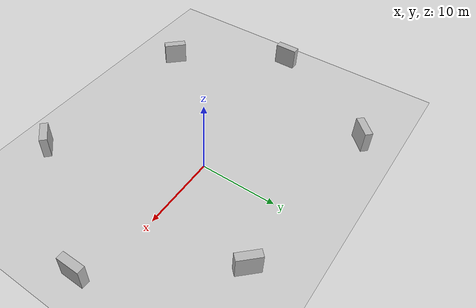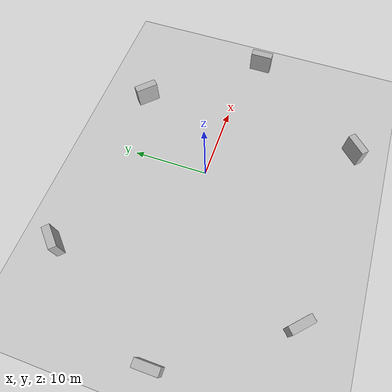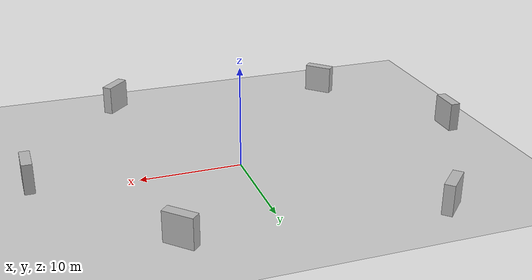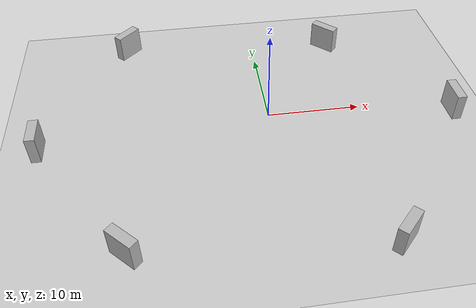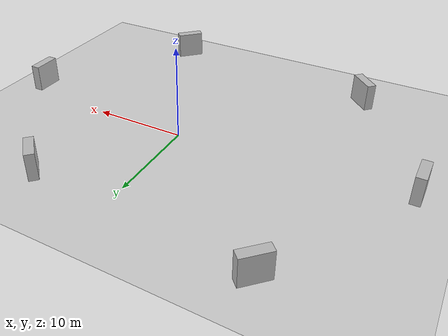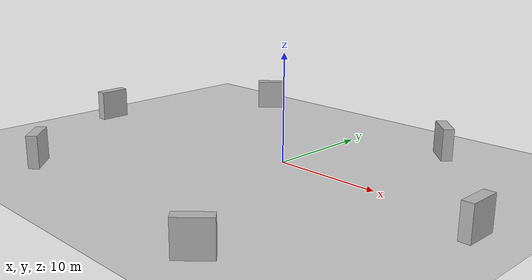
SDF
<sdf version="1.5">
 <world name="default">
  <include><uri>model://sun</uri></include>
  <include><uri>model://ground_plane</uri></include>
  <model name="aruco_visual_marker_1">
   <pose>-24 -2 0 0 0 1.5707963267948966</pose>
   <include><uri>model://aruco_visual_marker_1</uri></include>
  </model>
  <model name="aruco_visual_marker_5">
   <pose>-15 -16 0 0 0 -0.7853981633974483</pose>
   <include><uri>model://aruco_visual_marker_5</uri></include>
  </model>
  <model name="aruco_visual_marker_3">
   <pose>-15 14 0 0 0 0.7853981633974483</pose>
   <include><uri>model://aruco_visual_marker_3</uri></include>
  </model>
  <model name="aruco_visual_marker_2">
   <pose>9 -18 0 0 0 0.7853981633974483</pose>
   <include><uri>model://aruco_visual_marker_2</uri></include>
  </model>
  <model name="aruco_visual_marker_4">
   <pose>9 12 0 0 0 -0.7853981633974483</pose>
   <include><uri>model://aruco_visual_marker_4</uri></include>
  </model>
  <model name="aruco_visual_marker_0">
   <pose>20 -2 0 0 0 1.5707963267948966</pose>
   <include><uri>model://aruco_visual_marker_0</uri></include>
  </model>
 </world>
</sdf>

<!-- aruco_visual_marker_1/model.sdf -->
<sdf version="1.5">
  <model name="aruco_visual_marker_1">
    <static>true</static>
    <link name="chassis">
      <pose>0 0 1.5 0 0 0</pose>
      <collision name="collision">
        <geometry>
          <box>
            <size>3.0 1.0 3.0</size>
          </box>
        </geometry>
      </collision>
      <visual name="visual">
        <geometry>
          <mesh>
            <uri>model://aruco_visual_marker_1/meshes/simple_box.dae</uri>
            <scale>3.0 1.0 3.0</scale>
          </mesh>
        </geometry>
        <material>
          <script>
            <uri>model://aruco_visual_marker_1/materials/scripts</uri>
            <uri>model://aruco_visual_marker_1/materials/textures</uri>
          </script>
        </material>
      </visual>
    </link>
  </model>
</sdf>

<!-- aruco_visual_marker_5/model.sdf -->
<sdf version="1.5">
  <model name="aruco_visual_marker_5">
    <static>true</static>
    <link name="chassis">
      <pose>0 0 1.5 0 0 0</pose>
      <collision name="collision">
        <geometry>
          <box>
            <size>3.0 1.0 3.0</size>
          </box>
        </geometry>
      </collision>
      <visual name="visual">
        <geometry>
          <mesh>
            <uri>model://aruco_visual_marker_5/meshes/simple_box.dae</uri>
            <scale>3.0 1.0 3.0</scale>
          </mesh>
        </geometry>
        <material>
          <script>
            <uri>model://aruco_visual_marker_5/materials/scripts</uri>
            <uri>model://aruco_visual_marker_5/materials/textures</uri>
          </script>
        </material>
      </visual>
    </link>
  </model>
</sdf>

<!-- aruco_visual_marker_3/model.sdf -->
<sdf version="1.5">
  <model name="aruco_visual_marker_3">
    <static>true</static>
    <link name="chassis">
      <pose>0 0 1.5 0 0 0</pose>
      <collision name="collision">
        <geometry>
          <box>
            <size>3.0 1.0 3.0</size>
          </box>
        </geometry>
      </collision>
      <visual name="visual">
        <geometry>
          <mesh>
            <uri>model://aruco_visual_marker_3/meshes/simple_box.dae</uri>
            <scale>3.0 1.0 3.0</scale>
          </mesh>
        </geometry>
        <material>
          <script>
            <uri>model://aruco_visual_marker_3/materials/scripts</uri>
            <uri>model://aruco_visual_marker_3/materials/textures</uri>
          </script>
        </material>
      </visual>
    </link>
  </model>
</sdf>

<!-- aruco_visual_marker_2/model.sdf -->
<sdf version="1.5">
  <model name="aruco_visual_marker_2">
    <static>true</static>
    <link name="chassis">
      <pose>0 0 1.5 0 0 0</pose>
      <collision name="collision">
        <geometry>
          <box>
            <size>3.0 1.0 3.0</size>
          </box>
        </geometry>
      </collision>
      <visual name="visual">
        <geometry>
          <mesh>
            <uri>model://aruco_visual_marker_2/meshes/simple_box.dae</uri>
            <scale>3.0 1.0 3.0</scale>
          </mesh>
        </geometry>
        <material>
          <script>
            <uri>model://aruco_visual_marker_2/materials/scripts</uri>
            <uri>model://aruco_visual_marker_2/materials/textures</uri>
          </script>
        </material>
      </visual>
    </link>
  </model>
</sdf>

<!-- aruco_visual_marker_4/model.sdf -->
<sdf version="1.5">
  <model name="aruco_visual_marker_4">
    <static>true</static>
    <link name="chassis">
      <pose>0 0 1.5 0 0 0</pose>
      <collision name="collision">
        <geometry>
          <box>
            <size>3.0 1.0 3.0</size>
          </box>
        </geometry>
      </collision>
      <visual name="visual">
        <geometry>
          <mesh>
            <uri>model://aruco_visual_marker_4/meshes/simple_box.dae</uri>
            <scale>3.0 1.0 3.0</scale>
          </mesh>
        </geometry>
        <material>
          <script>
            <uri>model://aruco_visual_marker_4/materials/scripts</uri>
            <uri>model://aruco_visual_marker_4/materials/textures</uri>
          </script>
        </material>
      </visual>
    </link>
  </model>
</sdf>

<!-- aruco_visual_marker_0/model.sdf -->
<sdf version="1.5">
  <model name="aruco_visual_marker_0">
    <static>true</static>
    <link name="chassis">
      <pose>0 0 1.5 0 0 0</pose>
      <collision name="collision">
        <geometry>
          <box>
            <size>3.0 1.0 3.0</size>
          </box>
        </geometry>
      </collision>
      <visual name="visual">
        <geometry>
          <mesh>
            <uri>model://aruco_visual_marker_0/meshes/simple_box.dae</uri>
            <scale>3.0 1.0 3.0</scale>
          </mesh>
        </geometry>
        <material>
          <script>
            <uri>model://aruco_visual_marker_0/materials/scripts</uri>
            <uri>model://aruco_visual_marker_0/materials/textures</uri>
          </script>
        </material>
      </visual>
    </link>
  </model>
</sdf>
